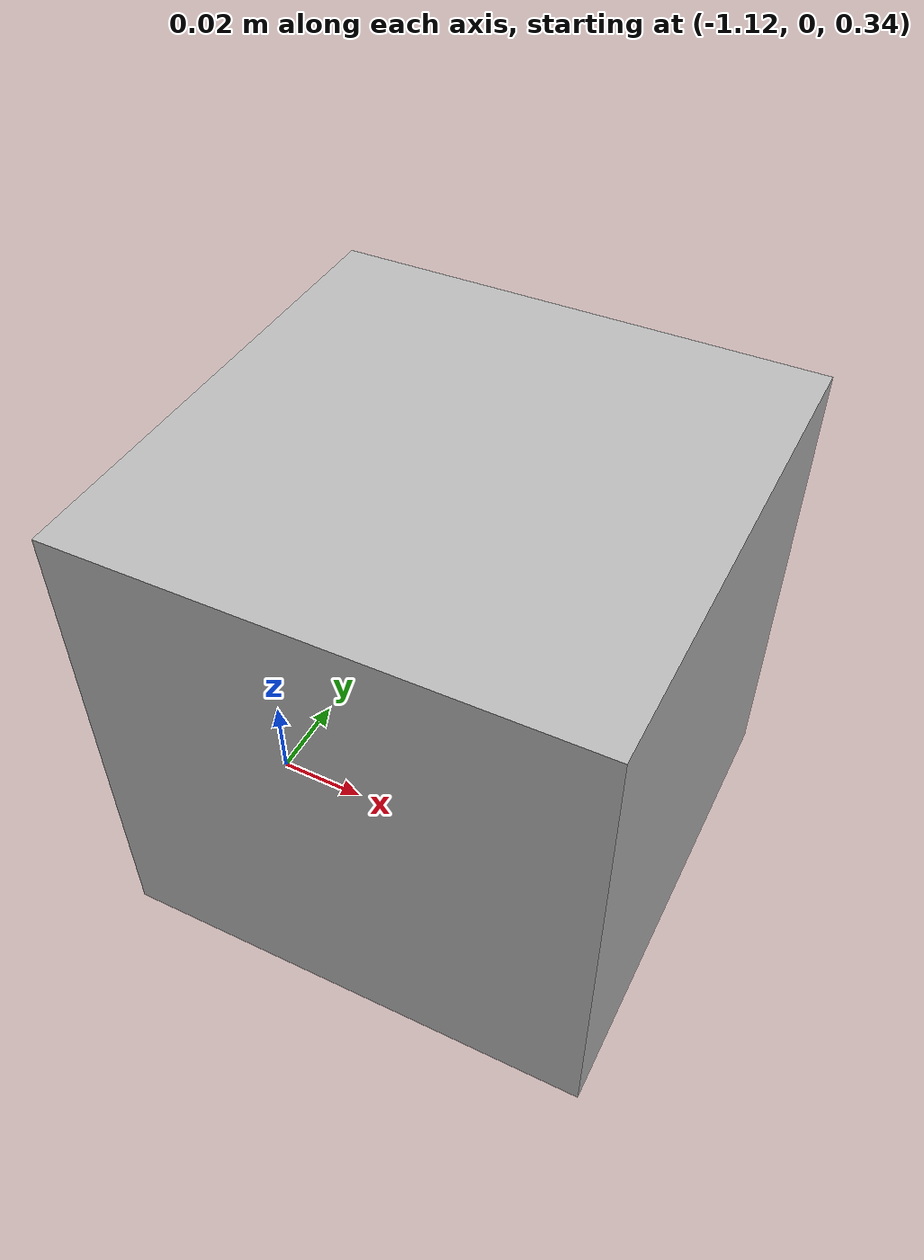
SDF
<?xml version='1.0'?>
<sdf version='1.6'>
  <model name="panoramic_camera">
     <pose frame=''>-1.07303 0 0.4 0 -1.5707 0</pose>
    <link name="link">
      <inertial>
        <mass>0.1</mass>
        <pose frame=''>0 0 0 0 -0 0</pose>
        <inertia>
          <ixx>0.0001</ixx>
          <ixy>0</ixy>
          <ixz>0</ixz>
          <iyy>0.0001</iyy>
          <iyz>0</iyz>
          <izz>0.0001</izz>
        </inertia>
      </inertial>
      <collision name="collision">
        <geometry>
          <box>
            <size>0.1 0.1 0.1</size>
          </box>
        </geometry>
      </collision>
      <visual name="visual">
        <geometry>
          <box>
            <size>0.1 0.1 0.1</size>
          </box>
        </geometry>
      </visual>
      <sensor name="camera" type="wideanglecamera">
        <camera>
          <horizontal_fov>6.2831</horizontal_fov>
          <image>
            <width>640</width>
            <height>640</height>
            <format>B8G8R8</format>
          </image>
          <clip>
            <near>0.1</near>
            <far>100</far>
          </clip>
          <lens>
            <type>custom</type>
            <scale_to_hfov>false</scale_to_hfov>
            <cutoff_angle>6.2831</cutoff_angle>
            <env_texture_size>512</env_texture_size>
            <custom_function>
            <c1>1.05</c1>
            <c2>4</c2>
            <f>2</f>
            <fun>tan</fun>
          </custom_function>
          </lens>
        </camera>
        <always_on>1</always_on>
        <update_rate>30</update_rate>
      </sensor>
    </link>
    <joint name='link_0_JOINT_0_0' type='fixed'>
      <parent>differential_drive_robot::link_0</parent>
      <child>panoramic_camera::link</child>
      <pose frame=''>0 0 0 0 -0 0</pose>
      <physics>
        <ode>
          <limit>
            <cfm>0</cfm>
            <erp>0.2</erp>
          </limit>
          <suspension>
            <cfm>0</cfm>
            <erp>0.2</erp>
          </suspension>
        </ode>
      </physics>
    </joint>
  </model>

</sdf>
